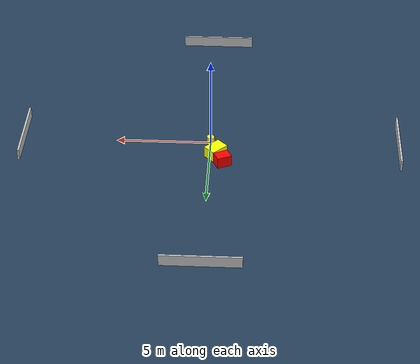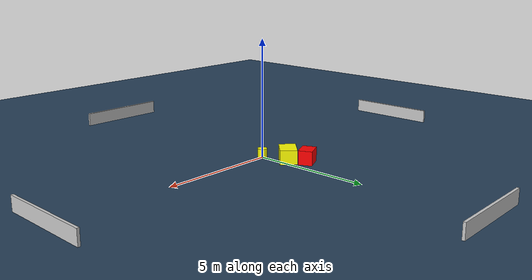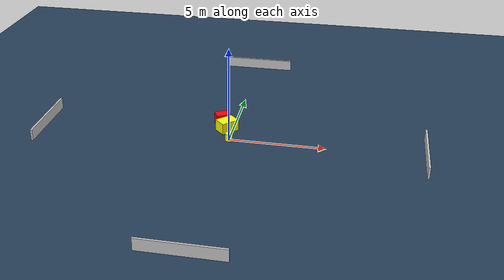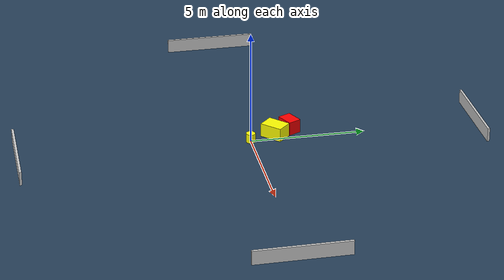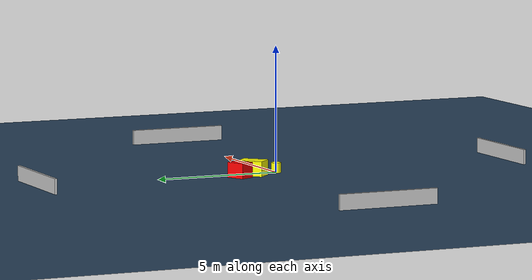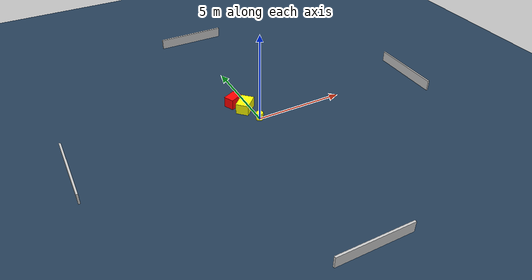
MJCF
<?xml version="1.0" ?>
<mujoco model="generated_environment">
  <option timestep="0.01" integrator="RK4" cone="elliptic"/>
  <default>
    <geom density="1"/>
  </default>
  <asset>
    <texture builtin="gradient" height="3072" name="skybox" rgb1="0.3 0.5 0.7" rgb2="0 0 0" type="skybox" width="512"/>
    <texture builtin="checker" height="300" name="groundplane" rgb1="0.2 0.3 0.4" rgb2="0.1 0.2 0.3" type="2d" width="300"/>
    <material name="groundplane" reflectance="0.2" texrepeat="5 5" texture="groundplane"/>
  </asset>
  <worldbody>
    <light dir="0 0 -1" directional="true" pos="0 0 1.5"/>
    <geom condim="3" friction="0.5 0.005 0.001" material="groundplane" name="floor" pos="0 0 0" size="0 0 0.05" type="plane"/>
    <body name="walls">
      <geom name="wall_1" condim="4" pos="-10.0 0.0 0.3" rgba="0.800000011920929 0.800000011920929 0.800000011920929 1.0" size="0.05 2.0 0.3" type="box"/>
      <geom name="wall_2" condim="4" pos="10.0 0.0 0.3" rgba="0.800000011920929 0.800000011920929 0.800000011920929 1.0" size="0.05 2.0 0.3" type="box"/>
      <geom name="wall_3" condim="4" pos="0.0 -10.0 0.3" rgba="0.800000011920929 0.800000011920929 0.800000011920929 1.0" size="2.0 0.05 0.3" type="box"/>
      <geom name="wall_4" condim="4" pos="0.0 10.0 0.3" rgba="0.800000011920929 0.800000011920929 0.800000011920929 1.0" size="2.0 0.05 0.3" type="box"/>
    </body>
    <body name="robot">
      <joint name="joint_x" type="slide" pos="0 0 0" axis="1 0 0"/>
      <joint name="joint_y" type="slide" pos="0 0 0" axis="0 1 0"/>
      <geom name="robot" type="cylinder" pos="0.0 0.0 0.2" size="0.2 0.2 0.0" mass="5.0" friction="1.0 0.005 0.0001" condim="4" rgba="1.0 1.0 0.0 1.0"/>
    </body>
    <body name="obstacle_1_movable">
      <geom name="obstacle_1_movable" condim="4" pos="-0.3198493666534264 1.1323563558458256 0.3" euler="0 0 44.82945418665301" friction="0.0 0.005 0.001" rgba="1.0 1.0 0.0 1.0" size="0.5009883593181508 0.35657814205394367 0.3" type="box" mass="0.1"/>
      <joint type="free"/>
    </body>
    <body name="obstacle_2_static">
      <geom name="obstacle_2_static" condim="4" pos="-0.7036180578735673 1.8542468873505356 0.3" euler="0 0 25.245655251027355" friction="0.0 0.005 0.001" rgba="1.0 0.0 0.0 1.0" size="0.38960815932055437 0.2928614397774285 0.3" type="box"/>
    </body>
  </worldbody>
  <actuator>
    <motor name="actuator_x" joint="joint_x" gear="1" ctrlrange="-1 1"/>
    <motor name="actuator_y" joint="joint_y" gear="1" ctrlrange="-1 1"/>
  </actuator>
</mujoco>
